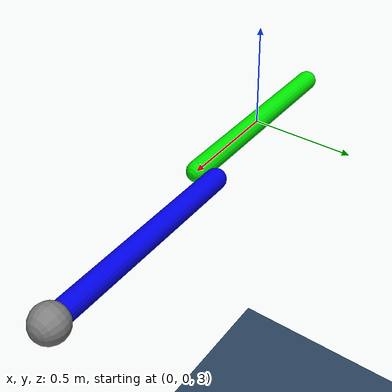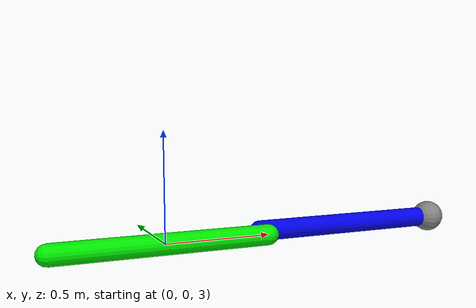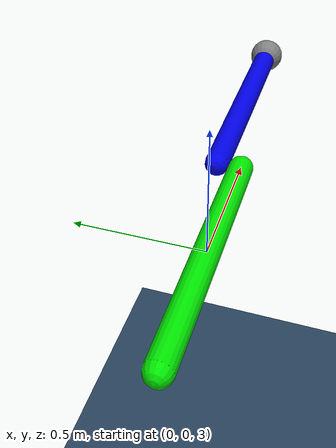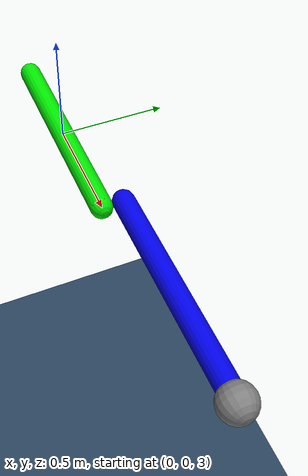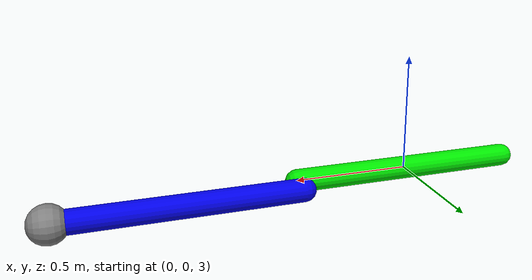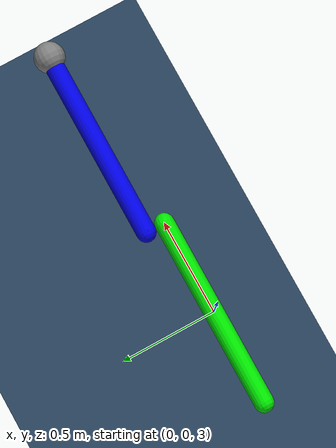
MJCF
<mujoco>
    <option gravity="0 0 -9.81" />
    <asset>
        <material name="green" rgba="0 0.9 0 1" />
        <material name="blue" rgba="0 0 0.9 1" />
        <texture name="grid" type="2d" builtin="checker" width="512" height="512" rgb1=".1 .2 .3" rgb2=".2 .3 .4" />
        <material name="grid" texture="grid" texrepeat="1 1" texuniform="true" reflectance=".2" />
    </asset>

    <worldbody>
        <light diffuse="0.3 0.3 0.3" pos="1 0 3" dir="-1 0 -3" />
        <geom type="plane" size="10 10 0.1"  material="grid" />

        <body pos="0 0 3.0" euler="0 90 0">
            <joint name="joint1" type="hinge" axis="0 -1 0" pos="0 0 -0.5" />
            <geom type="capsule" size="0.05 0.5" mass="1" material="green" />

            <body pos="0 0.1 1" euler="0 0 0">
                <joint name="joint2" type="hinge" axis="0 -1 0" pos="0 0 -0.5"  />
                <geom type="capsule" size="0.05 0.5" mass="1" material="blue" />
                <site name="ee" pos="0 0 0.5" size="0.08"/>
            </body>
        </body>

    </worldbody>

    <actuator>
        <position name="pos_ctrl1" joint="joint1" kp="100" />
        <velocity name="vel_ctrl1" joint="joint1" kv="10" />
        <position name="pos_ctrl2" joint="joint2" kp="100" />
        <velocity name="vel_ctrl2" joint="joint2" kv="10" />
    </actuator>

    <sensor>
		<framepos objtype="site" objname="ee" />
		<framelinvel objtype="site" objname="ee" />
	</sensor>

</mujoco>
